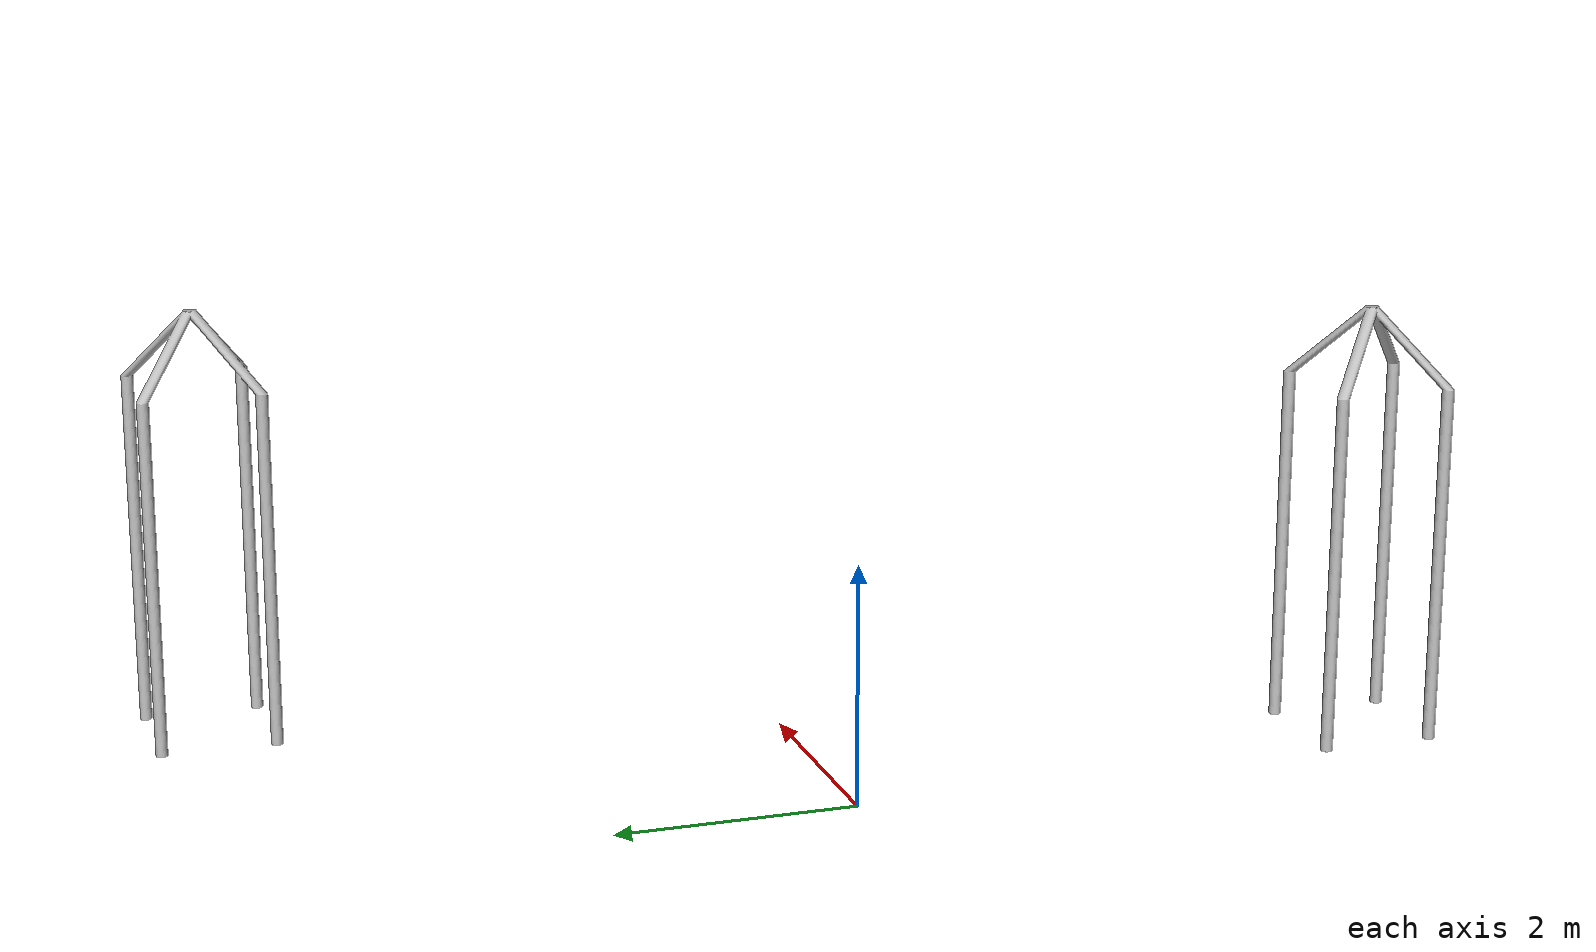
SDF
<?xml version="1.0"?>
<sdf version="1.6">
  <model name="new_pillar">
    <static>true</static>
    <link name="pillar_link">
      <visual name="visual_pillar">
        <cast_shadows>true</cast_shadows>
        <geometry>
          <mesh>
            <uri>model://cbrPillars/meshes/pillars.dae</uri>
          </mesh>
        </geometry>
        <material>
          <script>
            <uri>model://cbrPillars/materials/scripts</uri>
            <uri>model://cbrPillars/materials/textures</uri>
            <name>pillar/color</name>
          </script>
        </material>
      </visual>
      <collision name="collision_pillar">
        <geometry>
          <mesh>
            <uri>model://cbrPillars/meshes/pillars.dae</uri>
          </mesh>
        </geometry>
      </collision>
    </link>
  </model>
</sdf>
